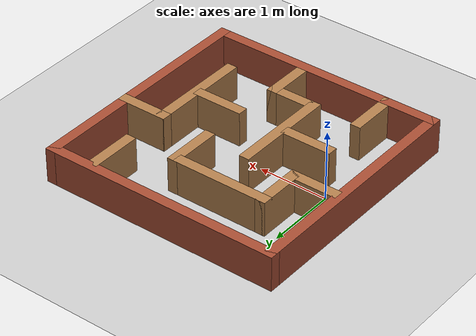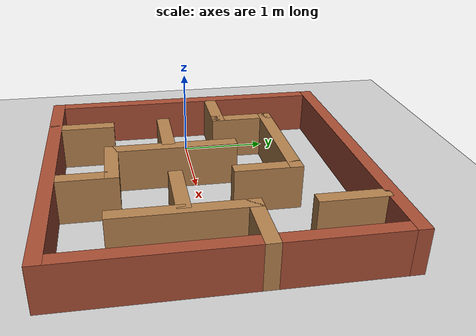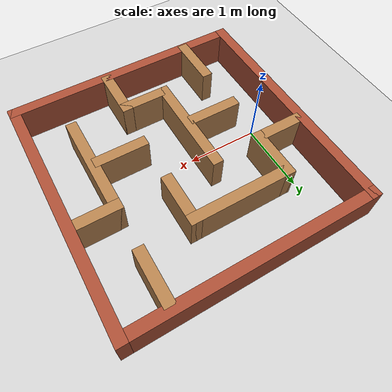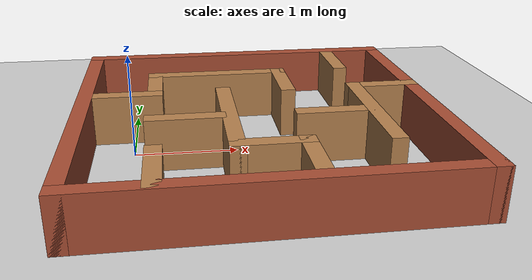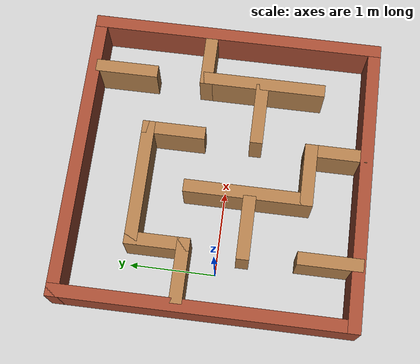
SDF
<sdf version="1.7">
 <world name="default">
  <plugin filename="gz-sim-physics-system" name="gz::sim::systems::Physics"/>
  <plugin filename="gz-sim-sensors-system" name="gz::sim::systems::Sensors">
   <render_engine>ogre</render_engine>
  </plugin>
  <plugin filename="gz-sim-user-commands-system" name="gz::sim::systems::UserCommands"/>
  <plugin filename="gz-sim-scene-broadcaster-system" name="gz::sim::systems::SceneBroadcaster"/>
  <model name="ground_plane">
   <static>1</static>
   <link name="link">
    <collision name="collision">
     <geometry><plane><normal>0 0 1</normal><size>100 100</size></plane></geometry>
     <surface><friction><ode><mu>100</mu><mu2>50</mu2></ode></friction></surface>
    </collision>
    <visual name="visual">
     <cast_shadows>0</cast_shadows>
     <geometry><plane><normal>0 0 1</normal><size>100 100</size></plane></geometry>
     <material>
      <script><uri>file://media/materials/scripts/gazebo.material</uri><name>Gazebo/Grey</name></script>
     </material>
    </visual>
   </link>
  </model>
  <light name="sun" type="directional">
   <pose>0 0 10 0 -0 0</pose>
   <diffuse>0.8 0.8 0.8 1</diffuse>
   <specular>0.2 0.2 0.2 1</specular>
   <attenuation>
    <range>1000</range>
    <constant>0.9</constant>
    <linear>0.01</linear>
    <quadratic>0.001</quadratic>
   </attenuation>
   <direction>-0.5 0.1 -0.9</direction>
   <spot><inner_angle>0</inner_angle><outer_angle>0</outer_angle><falloff>0</falloff></spot>
  </light>
  <scene><shadows>0</shadows><ambient>0.4 0.4 0.4 1</ambient><background>0.7 0.7 0.7 1</background></scene>
  <physics type="ode">
   <real_time_update_rate>1000</real_time_update_rate>
   <max_step_size>0.001</max_step_size>
   <real_time_factor>1</real_time_factor>
   <ode>
    <solver>
     <type>quick</type>
     <iters>150</iters>
     <precon_iters>0</precon_iters>
     <sor>1.4</sor>
     <use_dynamic_moi_rescaling>1</use_dynamic_moi_rescaling>
    </solver>
    <constraints>
     <cfm>1e-05</cfm>
     <erp>0.2</erp>
     <contact_max_correcting_vel>2000</contact_max_correcting_vel>
     <contact_surface_layer>0.01</contact_surface_layer>
    </constraints>
   </ode>
  </physics>
  <gravity>0 0 -9.8</gravity>
  <magnetic_field>6e-06 2.3e-05 -4.2e-05</magnetic_field>
  <atmosphere type="adiabatic"/>
  <audio><device>default</device></audio>
  <spherical_coordinates>
   <surface_model>EARTH_WGS84</surface_model>
   <latitude_deg>0</latitude_deg>
   <longitude_deg>0</longitude_deg>
   <elevation>0</elevation>
   <heading_deg>0</heading_deg>
  </spherical_coordinates>
  <model name="maze_world">
   <pose>1.19978 0.077313 0 0 -0 0</pose>
   <link name="Wall_0">
    <collision name="Wall_0_Collision">
     <geometry><box><size>3.5 0.15 0.5</size></box></geometry>
     <pose>0 0 0.25
           0 -0 0</pose>
    </collision>
    <visual name="Wall_0_Visual">
     <pose>0 0 0.25
           0 -0 0</pose>
     <geometry><box><size>3.5 0.15 0.5</size></box></geometry>
     <material>
      <script><uri>file://media/materials/scripts/gazebo.material</uri><name>Gazebo/Bricks</name></script>
      <ambient>1 1 1 1</ambient>
     </material>
     <meta><layer>0</layer></meta>
    </visual>
    <pose>-1.675 0 0 0 -0 -1.5708</pose>
   </link>
   <link name="Wall_10">
    <collision name="Wall_10_Collision">
     <geometry><box><size>0.75 0.15 0.5</size></box></geometry>
     <pose>0 0 0.25
           0 -0 0</pose>
    </collision>
    <visual name="Wall_10_Visual">
     <pose>0 0 0.25
           0 -0 0</pose>
     <geometry><box><size>0.75 0.15 0.5</size></box></geometry>
     <material>
      <script><uri>file://media/materials/scripts/gazebo.material</uri><name>Gazebo/Wood</name></script>
      <ambient>1 1 1 1</ambient>
     </material>
     <meta><layer>0</layer></meta>
    </visual>
    <pose>0.365 0.605 0 0 -0 -1.5708</pose>
   </link>
   <link name="Wall_14">
    <collision name="Wall_14_Collision">
     <geometry><box><size>0.75 0.15 0.5</size></box></geometry>
     <pose>0 0 0.25
           0 -0 0</pose>
    </collision>
    <visual name="Wall_14_Visual">
     <pose>0 0 0.25
           0 -0 0</pose>
     <geometry><box><size>0.75 0.15 0.5</size></box></geometry>
     <material>
      <script><uri>file://media/materials/scripts/gazebo.material</uri><name>Gazebo/Wood</name></script>
      <ambient>1 1 1 1</ambient>
     </material>
     <meta><layer>0</layer></meta>
    </visual>
    <pose>1.375 0.305 0 0 -0 0</pose>
   </link>
   <link name="Wall_18">
    <collision name="Wall_18_Collision">
     <geometry><box><size>0.75 0.15 0.5</size></box></geometry>
     <pose>0 0 0.25
           0 -0 0</pose>
    </collision>
    <visual name="Wall_18_Visual">
     <pose>0 0 0.25
           0 -0 0</pose>
     <geometry><box><size>0.75 0.15 0.5</size></box></geometry>
     <material>
      <script><uri>file://media/materials/scripts/gazebo.material</uri><name>Gazebo/Wood</name></script>
      <ambient>1 1 1 1</ambient>
     </material>
     <meta><layer>0</layer></meta>
    </visual>
    <pose>-0.705 -0.375 0 0 -0 0</pose>
   </link>
   <link name="Wall_2">
    <collision name="Wall_2_Collision">
     <geometry><box><size>3.5 0.15 0.5</size></box></geometry>
     <pose>0 0 0.25
           0 -0 0</pose>
    </collision>
    <visual name="Wall_2_Visual">
     <pose>0 0 0.25
           0 -0 0</pose>
     <geometry><box><size>3.5 0.15 0.5</size></box></geometry>
     <material>
      <script><uri>file://media/materials/scripts/gazebo.material</uri><name>Gazebo/Bricks</name></script>
      <ambient>1 1 1 1</ambient>
     </material>
     <meta><layer>0</layer></meta>
    </visual>
    <pose>0 -1.675 0 0 -0 0</pose>
   </link>
   <link name="Wall_20">
    <collision name="Wall_20_Collision">
     <geometry><box><size>1.5 0.15 0.5</size></box></geometry>
     <pose>0 0 0.25
           0 -0 0</pose>
    </collision>
    <visual name="Wall_20_Visual">
     <pose>0 0 0.25
           0 -0 0</pose>
     <geometry><box><size>1.5 0.15 0.5</size></box></geometry>
     <material>
      <script><uri>file://media/materials/scripts/gazebo.material</uri><name>Gazebo/Wood</name></script>
      <ambient>1 1 1 1</ambient>
     </material>
     <meta><layer>0</layer></meta>
    </visual>
    <pose>-0.295 -0.35 0 0 -0 -1.5708</pose>
   </link>
   <link name="Wall_24">
    <collision name="Wall_24_Collision">
     <geometry><box><size>0.75 0.15 0.5</size></box></geometry>
     <pose>0 0 0.25
           0 -0 0</pose>
    </collision>
    <visual name="Wall_24_Visual">
     <pose>0 0 0.25
           0 -0 0</pose>
     <geometry><box><size>0.75 0.15 0.5</size></box></geometry>
     <material>
      <script><uri>file://media/materials/scripts/gazebo.material</uri><name>Gazebo/Wood</name></script>
      <ambient>1 1 1 1</ambient>
     </material>
     <meta><layer>0</layer></meta>
    </visual>
    <pose>0.695 -0.375 0 0 -0 0</pose>
   </link>
   <link name="Wall_3">
    <collision name="Wall_3_Collision">
     <geometry><box><size>3.5 0.15 0.5</size></box></geometry>
     <pose>0 0 0.25
           0 -0 0</pose>
    </collision>
    <visual name="Wall_3_Visual">
     <pose>0 0 0.25
           0 -0 0</pose>
     <geometry><box><size>3.5 0.15 0.5</size></box></geometry>
     <material>
      <script><uri>file://media/materials/scripts/gazebo.material</uri><name>Gazebo/Bricks</name></script>
      <ambient>1 1 1 1</ambient>
     </material>
     <meta><layer>0</layer></meta>
    </visual>
    <pose>1.675 0 0 0 -0 1.5708</pose>
   </link>
   <link name="Wall_31">
    <collision name="Wall_31_Collision">
     <geometry><box><size>0.75 0.15 0.5</size></box></geometry>
     <pose>0 0 0.25
           0 -0 0</pose>
    </collision>
    <visual name="Wall_31_Visual">
     <pose>0 0 0.25
           0 -0 0</pose>
     <geometry><box><size>0.75 0.15 0.5</size></box></geometry>
     <material>
      <script><uri>file://media/materials/scripts/gazebo.material</uri><name>Gazebo/Wood</name></script>
      <ambient>1 1 1 1</ambient>
     </material>
     <meta><layer>0</layer></meta>
    </visual>
    <pose>-0.985 -1.355 0 0 -0 -1.5708</pose>
   </link>
   <link name="Wall_34">
    <collision name="Wall_34_Collision">
     <geometry><box><size>0.75 0.15 0.5</size></box></geometry>
     <pose>0 0 0.25
           0 -0 0</pose>
    </collision>
    <visual name="Wall_34_Visual">
     <pose>0 0 0.25
           0 -0 0</pose>
     <geometry><box><size>0.75 0.15 0.5</size></box></geometry>
     <material>
      <script><uri>file://media/materials/scripts/gazebo.material</uri><name>Gazebo/Wood</name></script>
      <ambient>1 1 1 1</ambient>
     </material>
     <meta><layer>0</layer></meta>
    </visual>
    <pose>1.085 1.275 0 0 -0 1.5708</pose>
   </link>
   <link name="Wall_36">
    <collision name="Wall_36_Collision">
     <geometry><box><size>0.75 0.15 0.5</size></box></geometry>
     <pose>0 0 0.25
           0 -0 0</pose>
    </collision>
    <visual name="Wall_36_Visual">
     <pose>0 0 0.25
           0 -0 0</pose>
     <geometry><box><size>0.75 0.15 0.5</size></box></geometry>
     <material>
      <script><uri>file://media/materials/scripts/gazebo.material</uri><name>Gazebo/Wood</name></script>
      <ambient>1 1 1 1</ambient>
     </material>
     <meta><layer>0</layer></meta>
    </visual>
    <pose>0.005 -1.025 0 0 -0 0</pose>
   </link>
   <link name="Wall_37">
    <collision name="Wall_37_Collision">
     <geometry><box><size>0.75 0.15 0.5</size></box></geometry>
     <pose>0 0 0.25
           0 -0 0</pose>
    </collision>
    <visual name="Wall_37_Visual">
     <pose>0 0 0.25
           0 -0 0</pose>
     <geometry><box><size>0.75 0.15 0.5</size></box></geometry>
     <material>
      <script><uri>file://media/materials/scripts/gazebo.material</uri><name>Gazebo/Wood</name></script>
      <ambient>1 1 1 1</ambient>
     </material>
     <meta><layer>0</layer></meta>
    </visual>
    <pose>0.305 -1.325 0 0 -0 -1.5708</pose>
   </link>
   <link name="Wall_4">
    <collision name="Wall_4_Collision">
     <geometry><box><size>3.5 0.15 0.5</size></box></geometry>
     <pose>0 0 0.25
           0 -0 0</pose>
    </collision>
    <visual name="Wall_4_Visual">
     <pose>0 0 0.25
           0 -0 0</pose>
     <geometry><box><size>3.5 0.15 0.5</size></box></geometry>
     <material>
      <script><uri>file://media/materials/scripts/gazebo.material</uri><name>Gazebo/Bricks</name></script>
      <ambient>1 1 1 1</ambient>
     </material>
     <meta><layer>0</layer></meta>
    </visual>
    <pose>0 1.675 0 0 -0 3.14159</pose>
   </link>
   <link name="Wall_43">
    <collision name="Wall_43_Collision">
     <geometry><box><size>1.5 0.15 0.5</size></box></geometry>
     <pose>0 0 0.25
           0 -0 0</pose>
    </collision>
    <visual name="Wall_43_Visual">
     <pose>0 0 0.25
           0 -0 0</pose>
     <geometry><box><size>1.5 0.15 0.5</size></box></geometry>
     <material>
      <script><uri>file://media/materials/scripts/gazebo.material</uri><name>Gazebo/Wood</name></script>
      <ambient>1 1 1 1</ambient>
     </material>
     <meta><layer>0</layer></meta>
    </visual>
    <pose>1.075 -0.37 0 0 -0 -1.5708</pose>
   </link>
   <link name="Wall_6">
    <collision name="Wall_6_Collision">
     <geometry><box><size>0.75 0.15 0.5</size></box></geometry>
     <pose>0 0 0.25
           0 -0 0</pose>
    </collision>
    <visual name="Wall_6_Visual">
     <pose>0 0 0.25
           0 -0 0</pose>
     <geometry><box><size>0.75 0.15 0.5</size></box></geometry>
     <material>
      <script><uri>file://media/materials/scripts/gazebo.material</uri><name>Gazebo/Wood</name></script>
      <ambient>1 1 1 1</ambient>
     </material>
     <meta><layer>0</layer></meta>
    </visual>
    <pose>-1.285 0.305 0 0 -0 3.14159</pose>
   </link>
   <link name="Wall_8">
    <collision name="Wall_8_Collision">
     <geometry><box><size>0.75 0.15 0.5</size></box></geometry>
     <pose>0 0 0.25
           0 -0 0</pose>
    </collision>
    <visual name="Wall_8_Visual">
     <pose>0 0 0.25
           0 -0 0</pose>
     <geometry><box><size>0.75 0.15 0.5</size></box></geometry>
     <material>
      <script><uri>file://media/materials/scripts/gazebo.material</uri><name>Gazebo/Wood</name></script>
      <ambient>1 1 1 1</ambient>
     </material>
     <meta><layer>0</layer></meta>
    </visual>
    <pose>-0.985 0.605 0 0 -0 1.5708</pose>
   </link>
   <link name="Wall_9">
    <collision name="Wall_9_Collision">
     <geometry><box><size>1.5 0.15 0.5</size></box></geometry>
     <pose>0 0 0.25
           0 -0 0</pose>
    </collision>
    <visual name="Wall_9_Visual">
     <pose>0 0 0.25
           0 -0 0</pose>
     <geometry><box><size>1.5 0.15 0.5</size></box></geometry>
     <material>
      <script><uri>file://media/materials/scripts/gazebo.material</uri><name>Gazebo/Wood</name></script>
      <ambient>1 1 1 1</ambient>
     </material>
     <meta><layer>0</layer></meta>
    </visual>
    <pose>-0.31 0.905 0 0 -0 0</pose>
   </link>
   <static>1</static>
  </model>
 </world>
</sdf>
